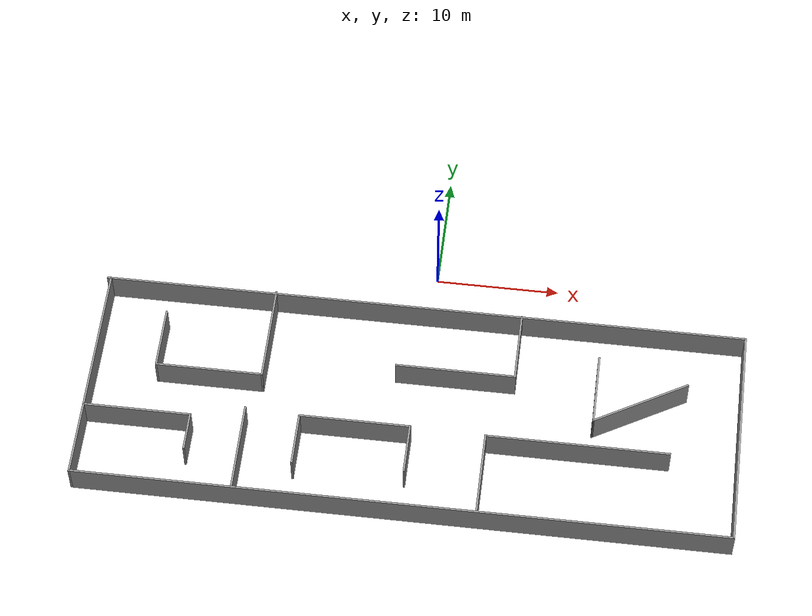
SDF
<?xml version='1.0'?>
<sdf version='1.7'>
  <model name='Untitled'>
    <pose>-0.643178 -11.573 0 0 -0 0</pose>
    <link name='Wall_35'>
      <collision name='Wall_35_Collision'>
        <geometry>
          <box>
            <size>52.5 0.15 2.5</size>
          </box>
        </geometry>
        <pose>0 0 1.25 0 -0 0</pose>
      </collision>
      <visual name='Wall_35_Visual'>
        <pose>0 0 1.25 0 -0 0</pose>
        <geometry>
          <box>
            <size>52.5 0.15 2.5</size>
          </box>
        </geometry>
        <material>
          <script>
            <uri>file://media/materials/scripts/gazebo.material</uri>
            <name>Gazebo/Grey</name>
          </script>
          <ambient>1 1 1 1</ambient>
        </material>
        <meta>
          <layer>0</layer>
        </meta>
      </visual>
      <pose>-0 7.10199 0 0 -0 0</pose>
    </link>
    <link name='Wall_36'>
      <collision name='Wall_36_Collision'>
        <geometry>
          <box>
            <size>18.75 0.15 2.5</size>
          </box>
        </geometry>
        <pose>0 0 1.25 0 -0 0</pose>
      </collision>
      <visual name='Wall_36_Visual'>
        <pose>0 0 1.25 0 -0 0</pose>
        <geometry>
          <box>
            <size>18.75 0.15 2.5</size>
          </box>
        </geometry>
        <material>
          <script>
            <uri>file://media/materials/scripts/gazebo.material</uri>
            <name>Gazebo/Grey</name>
          </script>
          <ambient>1 1 1 1</ambient>
        </material>
        <meta>
          <layer>0</layer>
        </meta>
      </visual>
      <pose>26.175 -2.19801 0 0 -0 -1.5708</pose>
    </link>
    <link name='Wall_37'>
      <collision name='Wall_37_Collision'>
        <geometry>
          <box>
            <size>52.25 0.15 2.5</size>
          </box>
        </geometry>
        <pose>0 0 1.25 0 -0 0</pose>
      </collision>
      <visual name='Wall_37_Visual'>
        <pose>0 0 1.25 0 -0 0</pose>
        <geometry>
          <box>
            <size>52.25 0.15 2.5</size>
          </box>
        </geometry>
        <material>
          <script>
            <uri>file://media/materials/scripts/gazebo.material</uri>
            <name>Gazebo/Grey</name>
          </script>
          <ambient>1 1 1 1</ambient>
        </material>
        <meta>
          <layer>0</layer>
        </meta>
      </visual>
      <pose>0.125 -11.498 0 0 -0 3.14159</pose>
    </link>
    <link name='Wall_38'>
      <collision name='Wall_38_Collision'>
        <geometry>
          <box>
            <size>18.75 0.15 2.5</size>
          </box>
        </geometry>
        <pose>0 0 1.25 0 -0 0</pose>
      </collision>
      <visual name='Wall_38_Visual'>
        <pose>0 0 1.25 0 -0 0</pose>
        <geometry>
          <box>
            <size>18.75 0.15 2.5</size>
          </box>
        </geometry>
        <material>
          <script>
            <uri>file://media/materials/scripts/gazebo.material</uri>
            <name>Gazebo/Grey</name>
          </script>
          <ambient>1 1 1 1</ambient>
        </material>
        <meta>
          <layer>0</layer>
        </meta>
      </visual>
      <pose>-25.925 -2.19801 0 0 -0 1.5708</pose>
    </link>
    <link name='Wall_40'>
      <collision name='Wall_40_Collision'>
        <geometry>
          <box>
            <size>5.25 0.15 2.5</size>
          </box>
        </geometry>
        <pose>0 0 1.25 0 -0 0</pose>
      </collision>
      <visual name='Wall_40_Visual'>
        <pose>0 0 1.25 0 -0 0</pose>
        <geometry>
          <box>
            <size>5.25 0.15 2.5</size>
          </box>
        </geometry>
        <material>
          <script>
            <uri>file://media/materials/scripts/gazebo.material</uri>
            <name>Gazebo/Grey</name>
          </script>
          <ambient>1 1 1 1</ambient>
        </material>
        <meta>
          <layer>0</layer>
        </meta>
      </visual>
      <pose>-20.8221 1.72171 0 0 -0 -1.5708</pose>
    </link>
    <link name='Wall_41'>
      <collision name='Wall_41_Collision'>
        <geometry>
          <box>
            <size>8.75 0.15 2.5</size>
          </box>
        </geometry>
        <pose>0 0 1.25 0 -0 0</pose>
      </collision>
      <visual name='Wall_41_Visual'>
        <pose>0 0 1.25 0 -0 0</pose>
        <geometry>
          <box>
            <size>8.75 0.15 2.5</size>
          </box>
        </geometry>
        <material>
          <script>
            <uri>file://media/materials/scripts/gazebo.material</uri>
            <name>Gazebo/Grey</name>
          </script>
          <ambient>1 1 1 1</ambient>
        </material>
        <meta>
          <layer>0</layer>
        </meta>
      </visual>
      <pose>-16.5221 -0.828289 0 0 -0 0</pose>
    </link>
    <link name='Wall_42'>
      <collision name='Wall_42_Collision'>
        <geometry>
          <box>
            <size>8.25 0.15 2.5</size>
          </box>
        </geometry>
        <pose>0 0 1.25 0 -0 0</pose>
      </collision>
      <visual name='Wall_42_Visual'>
        <pose>0 0 1.25 0 -0 0</pose>
        <geometry>
          <box>
            <size>8.25 0.15 2.5</size>
          </box>
        </geometry>
        <material>
          <script>
            <uri>file://media/materials/scripts/gazebo.material</uri>
            <name>Gazebo/Grey</name>
          </script>
          <ambient>1 1 1 1</ambient>
        </material>
        <meta>
          <layer>0</layer>
        </meta>
      </visual>
      <pose>-12.2221 3.22171 0 0 -0 1.5708</pose>
    </link>
    <link name='Wall_44'>
      <collision name='Wall_44_Collision'>
        <geometry>
          <box>
            <size>8.75 0.15 2.5</size>
          </box>
        </geometry>
        <pose>0 0 1.25 0 -0 0</pose>
      </collision>
      <visual name='Wall_44_Visual'>
        <pose>0 0 1.25 0 -0 0</pose>
        <geometry>
          <box>
            <size>8.75 0.15 2.5</size>
          </box>
        </geometry>
        <material>
          <script>
            <uri>file://media/materials/scripts/gazebo.material</uri>
            <name>Gazebo/Grey</name>
          </script>
          <ambient>1 1 1 1</ambient>
        </material>
        <meta>
          <layer>0</layer>
        </meta>
      </visual>
      <pose>-21.6289 -5.26511 0 0 -0 0</pose>
    </link>
    <link name='Wall_45'>
      <collision name='Wall_45_Collision'>
        <geometry>
          <box>
            <size>3.25 0.15 2.5</size>
          </box>
        </geometry>
        <pose>0 0 1.25 0 -0 0</pose>
      </collision>
      <visual name='Wall_45_Visual'>
        <pose>0 0 1.25 0 -0 0</pose>
        <geometry>
          <box>
            <size>3.25 0.15 2.5</size>
          </box>
        </geometry>
        <material>
          <script>
            <uri>file://media/materials/scripts/gazebo.material</uri>
            <name>Gazebo/Grey</name>
          </script>
          <ambient>1 1 1 1</ambient>
        </material>
        <meta>
          <layer>0</layer>
        </meta>
      </visual>
      <pose>-17.3289 -6.81511 0 0 -0 -1.5708</pose>
    </link>
    <link name='Wall_47'>
      <collision name='Wall_47_Collision'>
        <geometry>
          <box>
            <size>7.5 0.15 2.5</size>
          </box>
        </geometry>
        <pose>0 0 1.25 0 -0 0</pose>
      </collision>
      <visual name='Wall_47_Visual'>
        <pose>0 0 1.25 0 -0 0</pose>
        <geometry>
          <box>
            <size>7.5 0.15 2.5</size>
          </box>
        </geometry>
        <material>
          <script>
            <uri>file://media/materials/scripts/gazebo.material</uri>
            <name>Gazebo/Grey</name>
          </script>
          <ambient>1 1 1 1</ambient>
        </material>
        <meta>
          <layer>0</layer>
        </meta>
      </visual>
      <pose>-13.0696 -7.77108 0 0 -0 -1.5708</pose>
    </link>
    <link name='Wall_49'>
      <collision name='Wall_49_Collision'>
        <geometry>
          <box>
            <size>9 0.15 2.5</size>
          </box>
        </geometry>
        <pose>0 0 1.25 0 -0 0</pose>
      </collision>
      <visual name='Wall_49_Visual'>
        <pose>0 0 1.25 0 -0 0</pose>
        <geometry>
          <box>
            <size>9 0.15 2.5</size>
          </box>
        </geometry>
        <material>
          <script>
            <uri>file://media/materials/scripts/gazebo.material</uri>
            <name>Gazebo/Grey</name>
          </script>
          <ambient>1 1 1 1</ambient>
        </material>
        <meta>
          <layer>0</layer>
        </meta>
      </visual>
      <pose>-4.26607 -4.34219 0 0 -0 3.14159</pose>
    </link>
    <link name='Wall_50'>
      <collision name='Wall_50_Collision'>
        <geometry>
          <box>
            <size>4.5 0.15 2.5</size>
          </box>
        </geometry>
        <pose>0 0 1.25 0 -0 0</pose>
      </collision>
      <visual name='Wall_50_Visual'>
        <pose>0 0 1.25 0 -0 0</pose>
        <geometry>
          <box>
            <size>4.5 0.15 2.5</size>
          </box>
        </geometry>
        <material>
          <script>
            <uri>file://media/materials/scripts/gazebo.material</uri>
            <name>Gazebo/Grey</name>
          </script>
          <ambient>1 1 1 1</ambient>
        </material>
        <meta>
          <layer>0</layer>
        </meta>
      </visual>
      <pose>-8.69107 -6.51719 0 0 -0 -1.5708</pose>
    </link>
    <link name='Wall_52'>
      <collision name='Wall_52_Collision'>
        <geometry>
          <box>
            <size>6 0.15 2.5</size>
          </box>
        </geometry>
        <pose>0 0 1.25 0 -0 0</pose>
      </collision>
      <visual name='Wall_52_Visual'>
        <pose>0 0 1.25 0 -0 0</pose>
        <geometry>
          <box>
            <size>6 0.15 2.5</size>
          </box>
        </geometry>
        <material>
          <script>
            <uri>file://media/materials/scripts/gazebo.material</uri>
            <name>Gazebo/Grey</name>
          </script>
          <ambient>1 1 1 1</ambient>
        </material>
        <meta>
          <layer>0</layer>
        </meta>
      </visual>
      <pose>7.97297 4.23852 0 0 -0 -1.5708</pose>
    </link>
    <link name='Wall_53'>
      <collision name='Wall_53_Collision'>
        <geometry>
          <box>
            <size>9.75 0.15 2.5</size>
          </box>
        </geometry>
        <pose>0 0 1.25 0 -0 0</pose>
      </collision>
      <visual name='Wall_53_Visual'>
        <pose>0 0 1.25 0 -0 0</pose>
        <geometry>
          <box>
            <size>9.75 0.15 2.5</size>
          </box>
        </geometry>
        <material>
          <script>
            <uri>file://media/materials/scripts/gazebo.material</uri>
            <name>Gazebo/Grey</name>
          </script>
          <ambient>1 1 1 1</ambient>
        </material>
        <meta>
          <layer>0</layer>
        </meta>
      </visual>
      <pose>3.17297 1.31352 0 0 -0 3.14159</pose>
    </link>
    <link name='Wall_55'>
      <collision name='Wall_55_Collision'>
        <geometry>
          <box>
            <size>4.25 0.15 2.5</size>
          </box>
        </geometry>
        <pose>0 0 1.25 0 -0 0</pose>
      </collision>
      <visual name='Wall_55_Visual'>
        <pose>0 0 1.25 0 -0 0</pose>
        <geometry>
          <box>
            <size>4.25 0.15 2.5</size>
          </box>
        </geometry>
        <material>
          <script>
            <uri>file://media/materials/scripts/gazebo.material</uri>
            <name>Gazebo/Grey</name>
          </script>
          <ambient>1 1 1 1</ambient>
        </material>
        <meta>
          <layer>0</layer>
        </meta>
      </visual>
      <pose>0.158931 -6.39219 0 0 -0 -1.5708</pose>
    </link>
    <link name='Wall_57'>
      <collision name='Wall_57_Collision'>
        <geometry>
          <box>
            <size>7 0.15 2.5</size>
          </box>
        </geometry>
        <pose>0 0 1.25 0 -0 0</pose>
      </collision>
      <visual name='Wall_57_Visual'>
        <pose>0 0 1.25 0 -0 0</pose>
        <geometry>
          <box>
            <size>7 0.15 2.5</size>
          </box>
        </geometry>
        <material>
          <script>
            <uri>file://media/materials/scripts/gazebo.material</uri>
            <name>Gazebo/Grey</name>
          </script>
          <ambient>1 1 1 1</ambient>
        </material>
        <meta>
          <layer>0</layer>
        </meta>
      </visual>
      <pose>6.18866 -7.93137 0 0 -0 1.5708</pose>
    </link>
    <link name='Wall_58'>
      <collision name='Wall_58_Collision'>
        <geometry>
          <box>
            <size>14.75 0.15 2.5</size>
          </box>
        </geometry>
        <pose>0 0 1.25 0 -0 0</pose>
      </collision>
      <visual name='Wall_58_Visual'>
        <pose>0 0 1.25 0 -0 0</pose>
        <geometry>
          <box>
            <size>14.75 0.15 2.5</size>
          </box>
        </geometry>
        <material>
          <script>
            <uri>file://media/materials/scripts/gazebo.material</uri>
            <name>Gazebo/Grey</name>
          </script>
          <ambient>1 1 1 1</ambient>
        </material>
        <meta>
          <layer>0</layer>
        </meta>
      </visual>
      <pose>13.4887 -4.50637 0 0 -0 0</pose>
    </link>
    <link name='Wall_60'>
      <collision name='Wall_60_Collision'>
        <geometry>
          <box>
            <size>3.5 0.15 2.5</size>
          </box>
        </geometry>
        <pose>0 0 1.25 0 -0 0</pose>
      </collision>
      <visual name='Wall_60_Visual'>
        <pose>0 0 1.25 0 -0 0</pose>
        <geometry>
          <box>
            <size>3.5 0.15 2.5</size>
          </box>
        </geometry>
        <material>
          <script>
            <uri>file://media/materials/scripts/gazebo.material</uri>
            <name>Gazebo/Grey</name>
          </script>
          <ambient>1 1 1 1</ambient>
        </material>
        <meta>
          <layer>0</layer>
        </meta>
      </visual>
      <pose>14.5565 2.19351 0 0 -0 1.5708</pose>
    </link>
    <link name='Wall_62'>
      <collision name='Wall_62_Collision'>
        <geometry>
          <box>
            <size>2.75 0.15 2.5</size>
          </box>
        </geometry>
        <pose>0 0 1.25 0 -0 0</pose>
      </collision>
      <visual name='Wall_62_Visual'>
        <pose>0 0 1.25 0 -0 0</pose>
        <geometry>
          <box>
            <size>2.75 0.15 2.5</size>
          </box>
        </geometry>
        <material>
          <script>
            <uri>file://media/materials/scripts/gazebo.material</uri>
            <name>Gazebo/Grey</name>
          </script>
          <ambient>1 1 1 1</ambient>
        </material>
        <meta>
          <layer>0</layer>
        </meta>
      </visual>
      <pose>14.5565 -0.781489 0 0 -0 -1.5708</pose>
    </link>
    <link name='Wall_63'>
      <collision name='Wall_63_Collision'>
        <geometry>
          <box>
            <size>8.5 0.15 2.5</size>
          </box>
        </geometry>
        <pose>0 0 1.25 0 -0 0</pose>
      </collision>
      <visual name='Wall_63_Visual'>
        <pose>0 0 1.25 0 -0 0</pose>
        <geometry>
          <box>
            <size>8.5 0.15 2.5</size>
          </box>
        </geometry>
        <material>
          <script>
            <uri>file://media/materials/scripts/gazebo.material</uri>
            <name>Gazebo/Grey</name>
          </script>
          <ambient>1 1 1 1</ambient>
        </material>
        <meta>
          <layer>0</layer>
        </meta>
      </visual>
      <pose>18.1721 0.00601 0 0 -0 0.523599</pose>
    </link>
    <static>1</static>
  </model>
</sdf>
